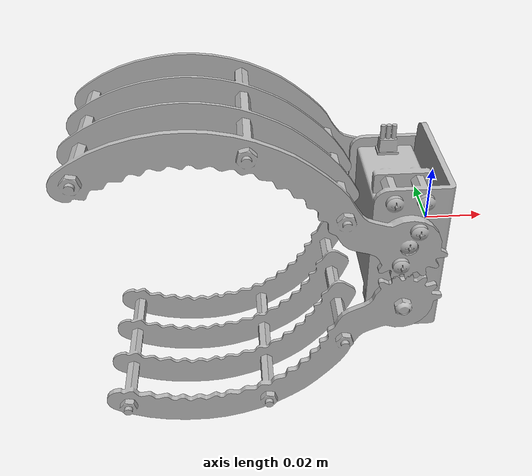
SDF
<sdf version='1.6'>
  <model name='gripper2'>
    <link name='base_link'>
      <pose frame=''>0 0 0 0 -0 0</pose>
      <inertial>
        <pose frame=''>-0.008431 -0.002651 -0.000156 0 -0 0</pose>
        <mass>0.11581</mass>
        <inertia>
          <ixx>5.4342e-05</ixx>
          <ixy>-3.727e-07</ixy>
          <ixz>-2.0098e-07</ixz>
          <iyy>2.8746e-05</iyy>
          <iyz>-6.0295e-07</iyz>
          <izz>3.713e-05</izz>
        </inertia>
      </inertial>
      <collision name='base_link_collision'>
        <pose frame=''>0 0 0 0 -0 0</pose>
        <geometry>
          <mesh>
            <scale>1 1 1</scale>
            <uri>model://gripper2/meshes/base_link.STL</uri>
          </mesh>
        </geometry>
      </collision>
      <visual name='base_link_visual'>
        <pose frame=''>0 0 0 0 -0 0</pose>
        <geometry>
          <mesh>
            <scale>1 1 1</scale>
            <uri>model://gripper2/meshes/base_link.STL</uri>
          </mesh>
        </geometry>
      </visual>
    </link>
    <link name='left_link'>
      <pose frame=''>-0.0135 0.024 -0.014 0 -0 0</pose>
      <inertial>
        <pose frame=''>-0.046709 -0.027439 -0.029147 0 -0 0</pose>
        <mass>0.030645</mass>
        <inertia>
          <ixx>2.9028e-06</ixx>
          <ixy>8.3629e-12</ixy>
          <ixz>-3.3228e-06</ixz>
          <iyy>9.4277e-06</iyy>
          <iyz>-3.8595e-12</iyz>
          <izz>7.9093e-06</izz>
        </inertia>
      </inertial>
      <collision name='left_link_collision'>
        <pose frame=''>0 0 0 0 -0 0</pose>
        <geometry>
          <mesh>
            <scale>1 1 1</scale>
            <uri>model://gripper2/meshes/left_link.STL</uri>
          </mesh>
        </geometry>
      </collision>
      <visual name='left_link_visual'>
        <pose frame=''>0 0 0 0 -0 0</pose>
        <geometry>
          <mesh>
            <scale>1 1 1</scale>
            <uri>model://gripper2/meshes/left_link.STL</uri>
          </mesh>
        </geometry>
      </visual>
    </link>
    <joint name='left_joint' type='revolute'>
      <child>left_link</child>
      <parent>base_link</parent>
      <axis>
        <xyz>0 1 0</xyz>
        <limit>
          <lower>0</lower>
          <upper>0</upper>
          <effort>0</effort>
          <velocity>0</velocity>
        </limit>
        <dynamics>
          <spring_reference>0</spring_reference>
          <spring_stiffness>0</spring_stiffness>
        </dynamics>
        <use_parent_model_frame>0</use_parent_model_frame>
      </axis>
    </joint>
    <link name='right_link'>
      <pose frame=''>-0.0135 0.024 0.01 0 -0 0</pose>
      <inertial>
        <pose frame=''>-0.046301 -0.029247 0.021379 0 -0 0</pose>
        <mass>0.03309</mass>
        <inertia>
          <ixx>2.1863e-06</ixx>
          <ixy>-1.0959e-11</ixy>
          <ixz>2.5315e-06</ixz>
          <iyy>9.3261e-06</iyy>
          <iyz>-2.3809e-12</iyz>
          <izz>8.531e-06</izz>
        </inertia>
      </inertial>
      <collision name='right_link_collision'>
        <pose frame=''>0 0 0 0 -0 0</pose>
        <geometry>
          <mesh>
            <scale>1 1 1</scale>
            <uri>model://gripper2/meshes/right_link.STL</uri>
          </mesh>
        </geometry>
      </collision>
      <visual name='right_link_visual'>
        <pose frame=''>0 0 0 0 -0 0</pose>
        <geometry>
          <mesh>
            <scale>1 1 1</scale>
            <uri>model://gripper2/meshes/right_link.STL</uri>
          </mesh>
        </geometry>
      </visual>
    </link>
    <joint name='right_joint' type='revolute'>
      <child>right_link</child>
      <parent>base_link</parent>
      <axis>
        <xyz>0 -1 0</xyz>
        <limit>
          <lower>-10</lower>
          <upper>10</upper>
          <effort>10</effort>
          <velocity>1</velocity>
        </limit>
        <dynamics>
          <spring_reference>0</spring_reference>
          <spring_stiffness>0</spring_stiffness>
        </dynamics>
        <use_parent_model_frame>0</use_parent_model_frame>
      </axis>
    </joint>
  <plugin name="gripper_control1" filename="libgripper_plugin1.so"/>
  </model>
</sdf>
